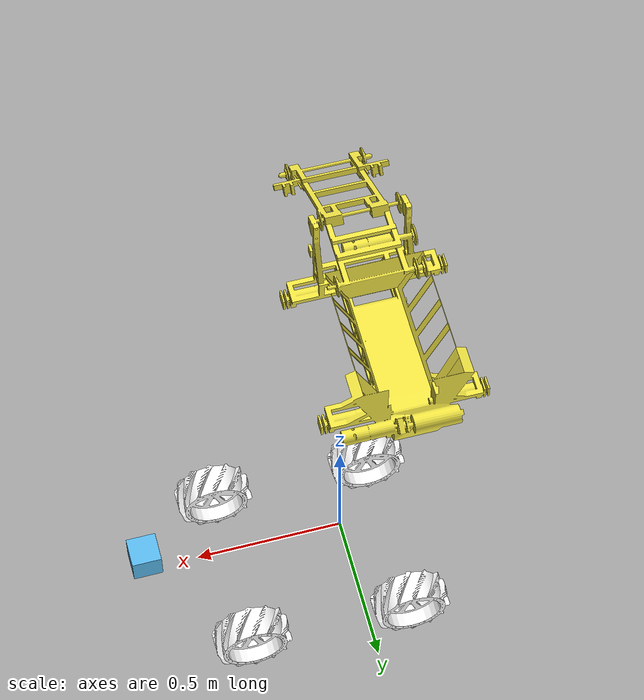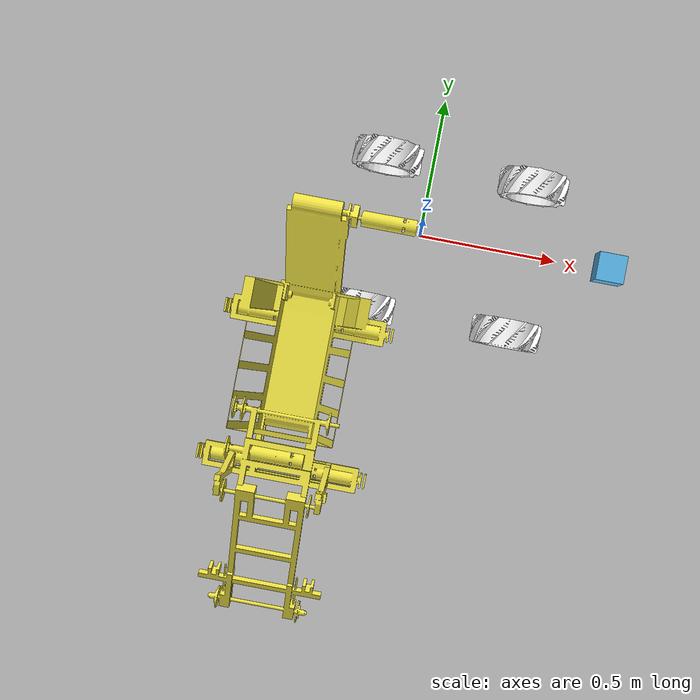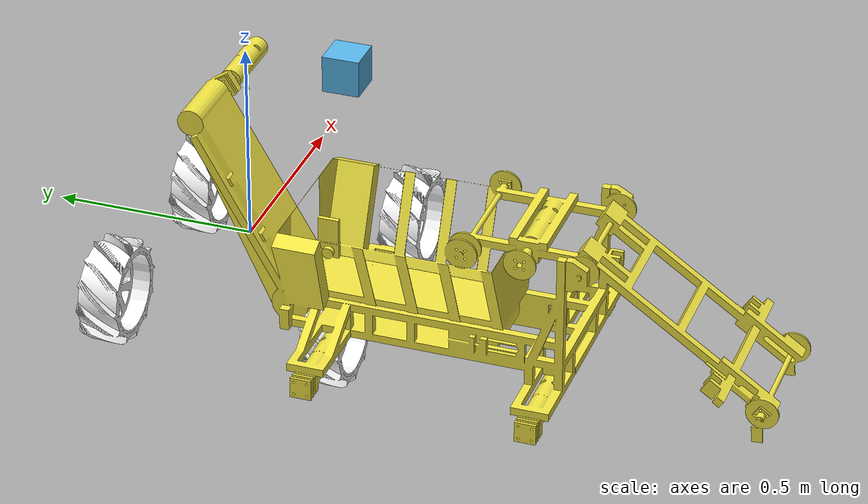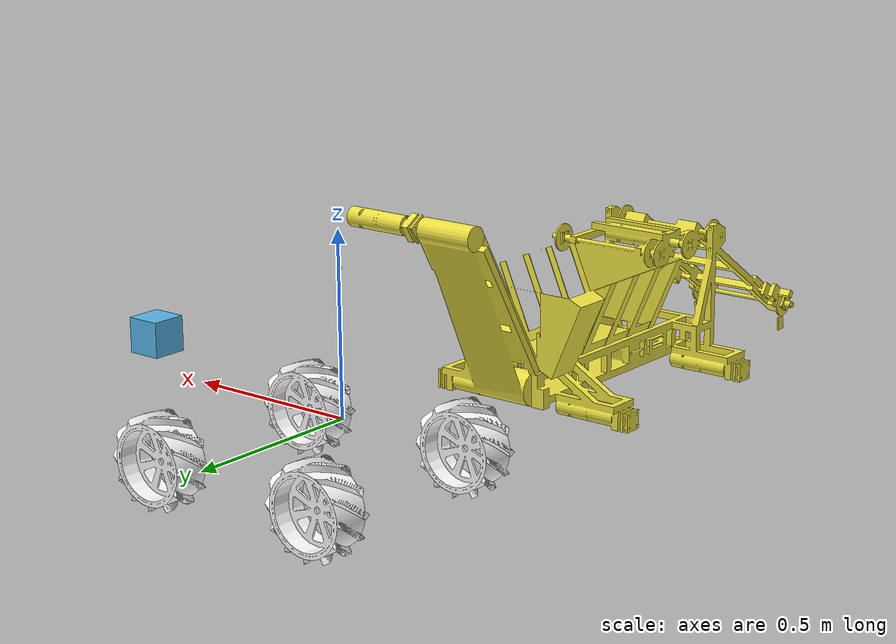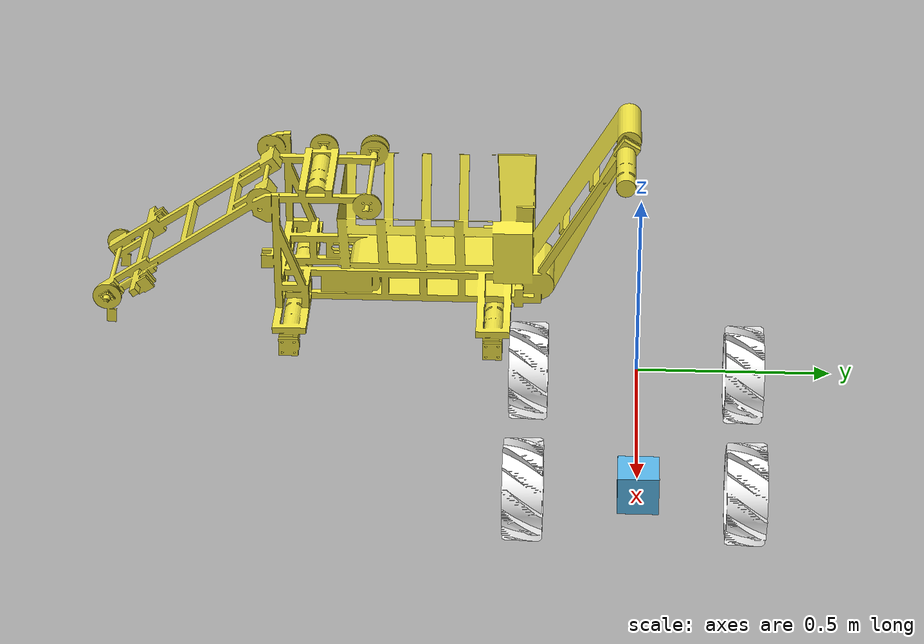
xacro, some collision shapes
<?xml version="1.0"?>
<!-- continuous-continuous Manipulator -->
<robot name="ales"
  xmlns:xacro="http://www.ros.org/wiki/xacro"
  xmlns:controller="http://playerstage.sourceforge.net/gazebo/xmlschema/#controller">

  <!-- Import all Gazebo-customization elements, including Gazebo colors -->
  <xacro:include filename="$(find ales_description)/urdf/ales.gazebo" />
  <xacro:include filename="$(find ales_description)/urdf/ales.transmission" />

  <link name="base_footprint">
      <origin xyz="0 0 0.0" rpy="0 0 0" />
      <inertial>
        <mass value="0.0001" />
        <origin xyz="0 0 0" />
        <inertia ixx="0.0001" ixy="0.0" ixz="0.0"
                 iyy="0.0001" iyz="0.0"
                 izz="0.0001" />
      </inertial>
      <visual>
        <origin xyz="0 0 0.0" rpy="0 0 0" />
        <geometry>
          <box size="0.001 0.001 0.001" />
        </geometry>
      </visual>

      <collision>
        <origin xyz="0 0 0.0" rpy="0 0 0" />
        <geometry>
          <box size="0.001 0.001 0.001" />
        </geometry>
      </collision>
  </link>

  <link name="base_link">
    <inertial>
        <mass value="35" />
        <origin xyz="0 0 0" rpy="0 0 3.141592"/>
        <inertia ixx="15.86" ixy="-12.099" ixz="15.696"
                 iyx="-12.099" iyy="2.043" iyz="12.722"
                 izx="15.696" izy="12.722" izz="19.371" />
    </inertial>
    <visual>
        <origin xyz="0 0 0" rpy="0 0 3.141592"/>
        <geometry>
              <mesh filename="package://ales_description/meshes/ales_chassis.dae" />
          </geometry>
      </visual>
      <collision>
          <origin xyz="0 0 0" rpy="0 0 3.141592" />
          <geometry>
              <mesh filename="package://ales_description/meshes/ales_chassis.dae" />
          </geometry>
      </collision>
  </link>

  <joint name="base_footprint_joint" type="fixed">
      <origin xyz="0 0 0" rpy="0 0 0" />
      <parent link="base_footprint"/>
      <child link="base_link" />
  </joint>

  <link name="rear_right_wheel_link">
    <inertial>
        <mass value="7.5" />
        <origin xyz="0 0 0" rpy="0 0 0"/>
        <inertia  ixx="0.012411765597" ixy="0.0" ixz="0.0"
                  iyy="0.015218160428" iyz="0.0"
                  izz="0.011763977943" />
    </inertial>
    <visual>
        <origin xyz="0 0 0" rpy="0 0 0" />
        <geometry>
            <mesh filename="package://ales_description/meshes/ales_wheel.dae"/>
        </geometry>
    </visual>
    <collision>
        <origin xyz="0 0 0" rpy="0 0 0" />
        <geometry>
            <mesh filename="package://ales_description/meshes/ales_wheel.dae"/>
        </geometry>
    </collision>
  </link>

  <link name="rear_left_wheel_link">
    <inertial>
        <mass value="7.5" />
        <origin xyz="0 0 0" rpy="0 0 0" />
        <inertia  ixx="0.012411765597" ixy="0.0" ixz="0.0"
                  iyy="0.015218160428" iyz="0.0"
                  izz="0.011763977943" />
    </inertial>
    <visual>
        <origin xyz="0 0 0" rpy="0 0 0" />
        <geometry>
            <mesh filename="package://ales_description/meshes/ales_wheel.dae"/>
        </geometry>
    </visual>
    <collision>
        <origin xyz="0 0 0" rpy="0 0 0" />
        <geometry>
            <mesh filename="package://ales_description/meshes/ales_wheel.dae"/>
        </geometry>
    </collision>
  </link>

  <link name="front_right_wheel_link">
    <inertial>
        <mass value="7.5" />
        <origin xyz="0 0 0" rpy="0 0 0" />
        <inertia  ixx="0.012411765597" ixy="0.0" ixz="0.0"
                  iyy="0.015218160428" iyz="0.0"
                  izz="0.011763977943" />
    </inertial>
    <visual>
        <origin xyz="0 0 0" rpy="0 0 0" />
        <geometry>
            <mesh filename="package://ales_description/meshes/ales_wheel.dae"/>
        </geometry>
    </visual>
    <collision>
        <origin xyz="0 0 0" rpy="0 0 0" />
        <geometry>
            <mesh filename="package://ales_description/meshes/ales_wheel.dae"/>
        </geometry>
    </collision>
  </link>

  <link name="front_left_wheel_link">
    <inertial>
        <mass value="7.5" />
        <origin xyz="0 0 0" rpy="0 0 0" />
        <inertia  ixx="0.012411765597" ixy="0.0" ixz="0.0"
                  iyy="0.015218160428" iyz="0.0"
                  izz="0.011763977943" />
    </inertial>
    <visual>
        <origin xyz="0 0 0" rpy="0 0 0" />
        <geometry>
            <mesh filename="package://ales_description/meshes/ales_wheel.dae"/>
        </geometry>
    </visual>
    <collision>
        <origin xyz="0 0 0" rpy="0 0 0"/>
        <geometry>
            <mesh filename="package://ales_description/meshes/ales_wheel.dae"/>
        </geometry>
    </collision>
  </link>

 <joint name="front_right_wheel_joint" type="continuous">
    <parent link="base_link" />
    <child link="front_right_wheel_link" />
    <axis xyz="1 0 0" />
    <origin xyz="0.3815 -0.287 -0.121" rpy="0 0 1.570796" />
    <dynamics damping="5.0" />
    <limit effort="150" velocity="75" />
  </joint>

  <joint name="front_left_wheel_joint" type="continuous">
    <parent link="base_link" />
    <child link="front_left_wheel_link" />
    <axis xyz="1 0 0" />
    <origin xyz="0.3815 0.275 -0.121" rpy="0 0 1.570796" />
    <dynamics damping="5.0" />
    <limit effort="150" velocity="75" />
  </joint>

  <joint name="rear_right_wheel_joint" type="continuous">
    <parent link="base_link" />
    <child link="rear_right_wheel_link" />
    <axis xyz="1 0 0" />
    <origin xyz="-0.1750 -0.287 -0.121" rpy="0 0 1.570796" />
    <dynamics damping="5.0" />
    <limit effort="150" velocity="75" />
  </joint>

 <joint name="rear_left_wheel_joint" type="continuous">
    <parent link="base_link" />
    <child link="rear_left_wheel_link" />
    <axis xyz="1 0 0" />
    <origin xyz="-0.1750 0.285 -0.121" rpy="0 0 1.570796" />
    <dynamics damping="5.0" />
    <limit effort="150" velocity="75" />
  </joint>

</robot>

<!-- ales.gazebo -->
<robot name="ales">

  <gazebo>
    <!-- robot model offset -->
  </gazebo>

  <link name="imu_link">
    <inertial>
      <mass value="0.1"/>
      <origin xyz="0 0 0"/>
      <inertia ixx="0.001" ixy="0" ixz="0" iyy="0.001" iyz="0" izz="0.001"/>
    </inertial>
    <collision>
      <origin rpy="0 0 0" xyz="0 0 0"/>
      <geometry>
        <box size="0.01 0.01 0.01"/>
      </geometry>
    </collision>
    <visual>
      <origin rpy="0 0 0" xyz="0 0 0"/>
      <geometry>
        <box size="0.01 0.01 0.01"/>
      </geometry>
    </visual>
  </link>
  <joint name="imu_joint" type="fixed">
    <parent link="base_link"/>
    <child link="imu_link"/>
    <origin xyz="0.0 0.0 0.4" rpy="0 0 0"/>
  </joint>
  <gazebo>
    <plugin filename="libgazebo_ros_imu.so" name="drc_robot_imu">
      <alwaysOn>true</alwaysOn>
      <updateRate>100.0</updateRate>
      <bodyName>imu_link</bodyName>
      <topicName>imu</topicName>
      <gaussianNoise>0.0</gaussianNoise>
      <xyzOffsets>0 0 0</xyzOffsets>
      <rpyOffsets>0 0 0</rpyOffsets>
    </plugin>
  </gazebo>

  <gazebo reference="imu_link">
    <!-- this is expected to be reparented to pelvis with appropriate offset
         when imu_link is reduced by fixed joint reduction -->
    <!-- todo: this is working with gazebo 1.4, need to write a unit test -->
    <sensor name="imu_sensor" type="imu">
      <always_on>1</always_on>
      <update_rate>1000.0</update_rate>
      <imu>
        <noise>
          <type>gaussian</type>
          <rate>
            <mean>0.0</mean>
            <stddev>2e-4</stddev>
            <bias_mean>0.0000075</bias_mean>
            <bias_stddev>0.0000008</bias_stddev>
          </rate>
          <accel>
            <mean>0.0</mean>
            <stddev>1.7e-2</stddev>
            <bias_mean>0.1</bias_mean>
            <bias_stddev>0.001</bias_stddev>
          </accel>
        </noise>
      </imu>
    </sensor>
  </gazebo>

  <joint name="hokuyo_joint" type="fixed">
    <axis xyz="0 1 0" />
    <origin xyz="0.68 0 0.105" rpy="0 0 0"/>
    <parent link="base_link"/>
    <child link="hokuyo_link"/>
  </joint>

  <link name="hokuyo_link">
    <collision>
      <origin xyz="0 0 0" rpy="0 0 0"/>
      <geometry>
    <box size="0.1 0.1 0.1"/>
      </geometry>
    </collision>

    <visual>
      <origin xyz="0 0 0" rpy="0 0 0"/>
      <geometry>
        <mesh filename="package://ales_description/meshes/hokuyo.dae"/>
      </geometry>
    </visual>

    <inertial>
      <mass value="1e-5" />
      <origin xyz="0 0 0" rpy="0 0 0"/>
      <inertia ixx="1e-6" ixy="0" ixz="0" iyy="1e-6" iyz="0" izz="1e-6" />
    </inertial>
  </link>

  <!-- hokuyo -->
  <gazebo reference="hokuyo_link">
    <sensor type="gpu_ray" name="head_hokuyo_sensor">
      <pose>0 0 0 0 0 0</pose>
      <visualize>false</visualize>
      <update_rate>40</update_rate>
      <ray>
        <scan>
          <horizontal>
            <samples>720</samples>
            <resolution>1</resolution>
            <min_angle>-1.570796</min_angle>
            <max_angle>1.570796</max_angle>
          </horizontal>
        </scan>
        <range>
          <min>0.10</min>
          <max>30.0</max>
          <resolution>0.01</resolution>
        </range>
        <noise>
          <type>gaussian</type>
          <mean>0.0</mean>
          <stddev>0.01</stddev>
        </noise>
      </ray>
      <plugin name="gazebo_ros_head_hokuyo_controller" filename="libgazebo_ros_gpu_laser.so">
        <topicName>/ales/laser/scan</topicName>
        <frameName>hokuyo_link</frameName>
      </plugin>
    </sensor>
  </gazebo>

  <gazebo reference="front_wheel_left_link">
    <mu1>0.45</mu1>
    <mu2>0.35</mu2>
  </gazebo>
  <gazebo reference="front_wheel_right_link">
    <mu1>0.45</mu1>
    <mu2>0.35</mu2>
  </gazebo>

  <gazebo reference="rear_wheel_left_link">
    <mu1>0.45</mu1>
    <mu2>0.35</mu2>
  </gazebo>

  <gazebo reference="rear_wheel_left_link">
    <mu1>0.45</mu1>
    <mu2>0.35</mu2>
  </gazebo>

  <gazebo>

    <plugin filename="libgazebo_ros_controller_manager.so" name="gazebo_ros_controller_manager">
      <alwaysOn>true</alwaysOn>
      <updateRate>1000.0</updateRate>
    </plugin>

  </gazebo>
  <gazebo>
    <plugin filename="libgazebo_ros_joint_pose_trajectory.so" name="joint_trajectory_pose_plugin">
      <topicName>joint_trajectory</topicName>
      <updateRate>1000.0</updateRate>
    </plugin>

    <plugin name="skid_steer_drive" filename="libgazebo_ros_skid_steer_drive.so">
      <commandTopic>cmd_vel</commandTopic>
      <odometryTopic>/odom_skidsteer</odometryTopic>
      <odometryFrame>odom_skidsteer</odometryFrame>
      <robotBaseFrame>base_footprint</robotBaseFrame>
      <updateRate>50</updateRate>
      <base_footprint>base_footprint</base_footprint>
      <wheelDiameter>0.254</wheelDiameter>
      <wheelSeparation>0.556</wheelSeparation>
      <leftFrontJoint>front_left_wheel_joint</leftFrontJoint>
      <rightFrontJoint>front_right_wheel_joint</rightFrontJoint>
      <leftRearJoint>rear_left_wheel_joint</leftRearJoint>
      <rightRearJoint>rear_right_wheel_joint</rightRearJoint>
      <torque>300</torque>
    </plugin>
  </gazebo>

</robot>
